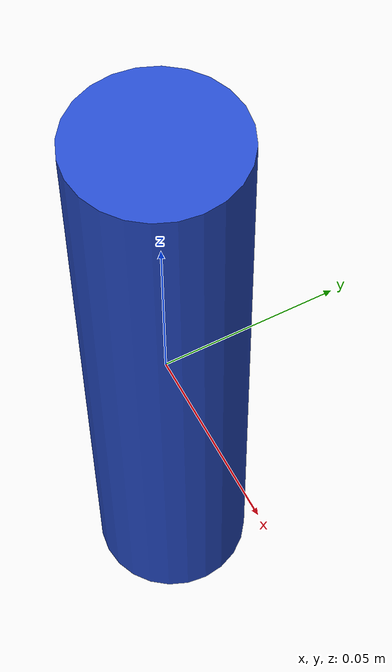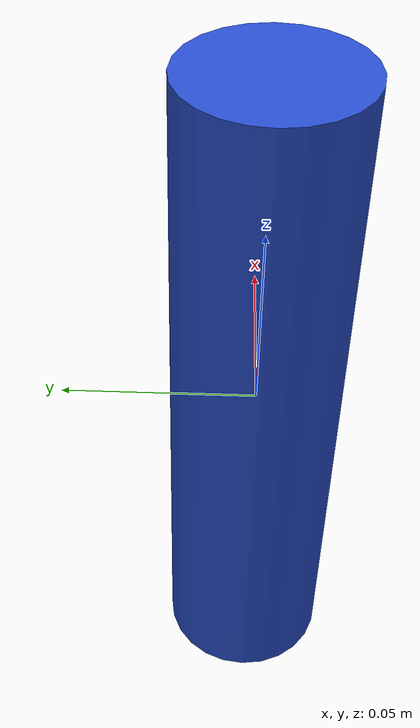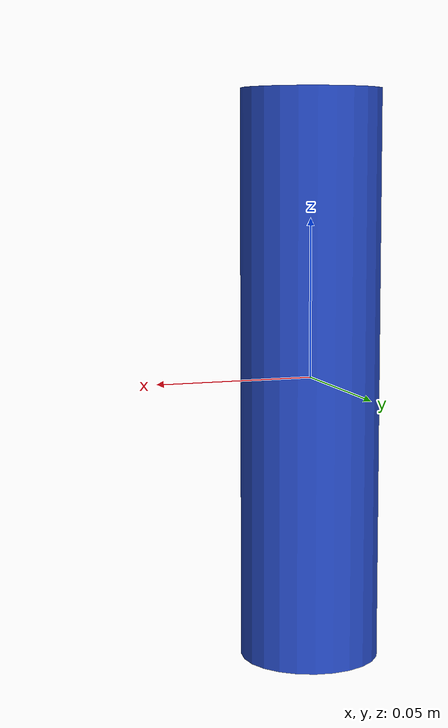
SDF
<?xml version="1.0" ?>
<sdf version='1.4'>
  <model name="fetch_pick_and_place_cylinder">
      <static>0</static>
      <link name='link'>
        <inertial>
          <mass>0.25</mass>
          <inertia>
            <ixx>0.001</ixx>
            <ixy>0.000000</ixy>
            <ixz>0.000000</ixz>
            <iyy>0.001</iyy>
            <iyz>0.000000</iyz>
            <izz>0.001</izz>
          </inertia>
        </inertial>
        <collision name='collision'>
          <geometry>
            <cylinder>
              <radius>0.022</radius>
              <length>0.18</length>
            </cylinder>
          </geometry>
          <surface>
            <friction>
              <ode>
                <mu>30.0</mu>
                <mu2>30.0</mu2>
              </ode>
            </friction>
            <contact>
              <ode>
                <kp>1000000.0</kp>
                <kd>100.0</kd>
                <max_vel>1.0</max_vel>
                <min_depth>0.002</min_depth>
              </ode>
            </contact>
          </surface>
        </collision>
        <visual name='visual'>
          <geometry>
            <cylinder>
              <radius>0.022</radius>
              <length>0.18</length>
            </cylinder>
          </geometry>
          <material>
            <script>
              <uri>file://media/materials/scripts/gazebo.material</uri>
              <name>Gazebo/Blue</name>
            </script>
          </material>
        </visual>
        <velocity_decay>
          <linear>0.000000</linear>
          <angular>0.000000</angular>
        </velocity_decay>
        <self_collide>0</self_collide>
        <kinematic>0</kinematic>
        <gravity>1</gravity>
      </link>
  </model>
</sdf>
